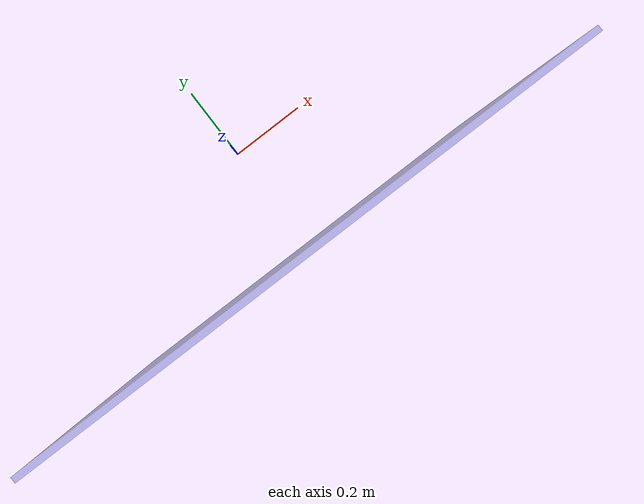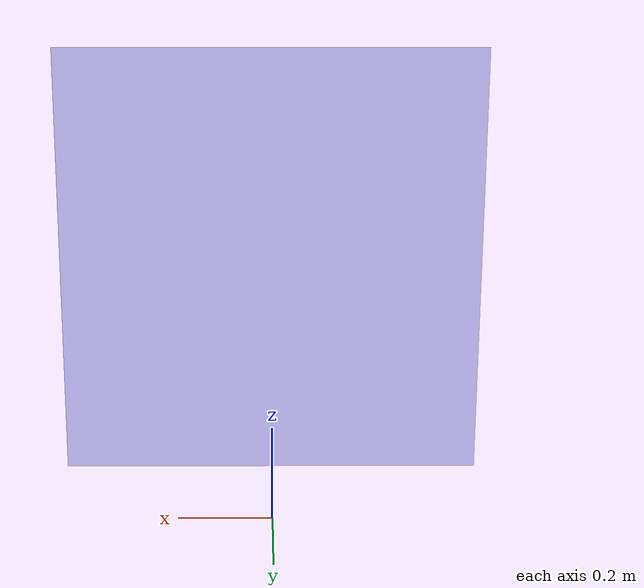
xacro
<?xml version="1.0"?>

<robot name="test box" xmlns:xacro="http://www.ros.org/wiki/xacro">

  <xacro:property name="mass" value="0.01" />
  <xacro:property name="length" value="1" />
  <xacro:property name="width" value="0.01" />
  <xacro:property name="height" value="1" />

  <!-- Import all Gazebo-customization elements, including Gazebo colors -->
  <xacro:include filename="$(find rrbot_description)/urdf/testbox.gazebo" />
  <!-- Import Rviz colors -->
  <xacro:include filename="$(find rrbot_description)/urdf/materials.xacro" />

  <!-- Used for fixing robot to Gazebo 'base_link' -->
  <link name="world"/>

  <joint name="fixed" type="fixed">
    <parent link="world"/>
    <child link="box"/>
  </joint>

    <link name="box">
      <visual>
        <origin xyz="0.001875 -0.3 ${height/2}" rpy="0.0 0.0 0.0"/>
        <geometry>
          <box size ="${length} ${width} ${height}"/>
        </geometry>
        <material name="gray"><color rgba="0.5 0.5 0.9 0.5"/></material>
      </visual>
      <collision>
        <origin xyz="0.001875 -0.3 ${height/2}" rpy="0.0 0.0 0.0"/>
        <geometry>
          <box size ="${length} ${width} ${height}"/>
        </geometry>
      </collision>
    <inertial>
      <mass value="1000"/>
      <inertia
	  ixx="0.0" ixy="0.0" ixz="0.0"
	  iyy="0.0" iyz="0.0"
	  izz="0.0"/>
    </inertial>
    </link>

</robot>
